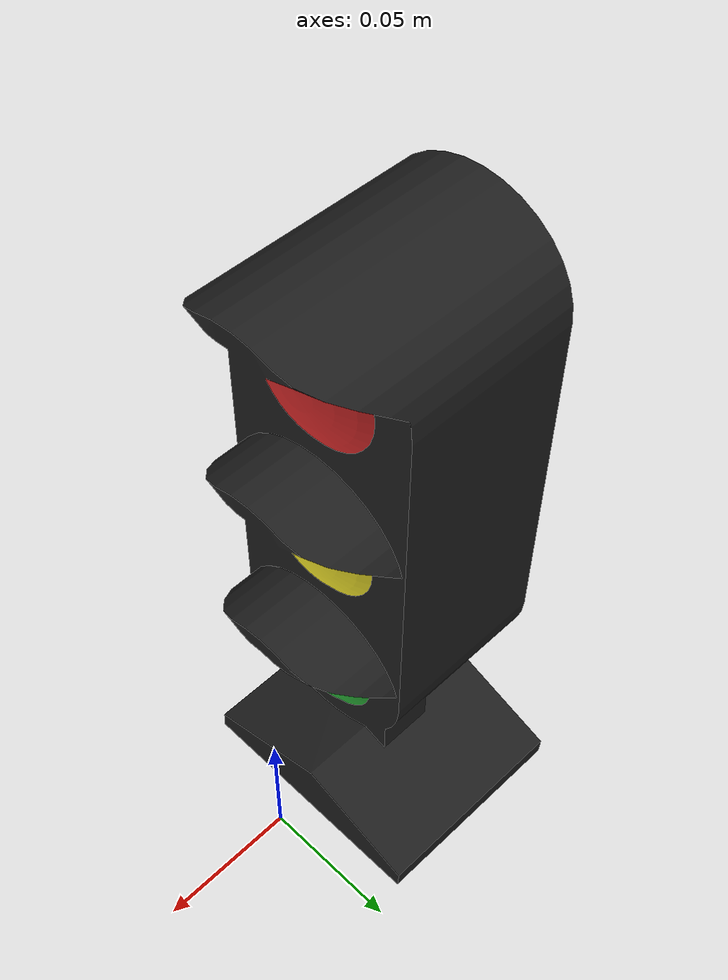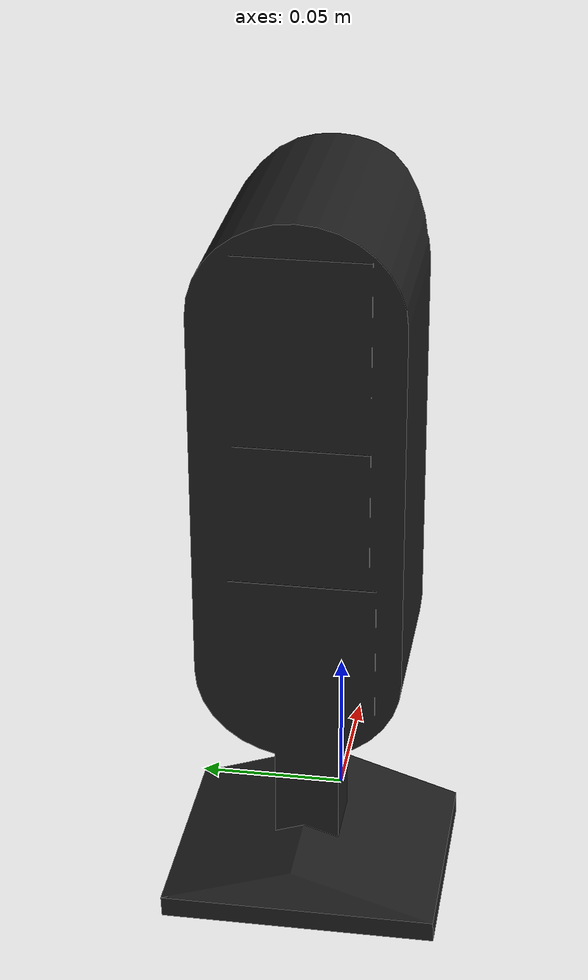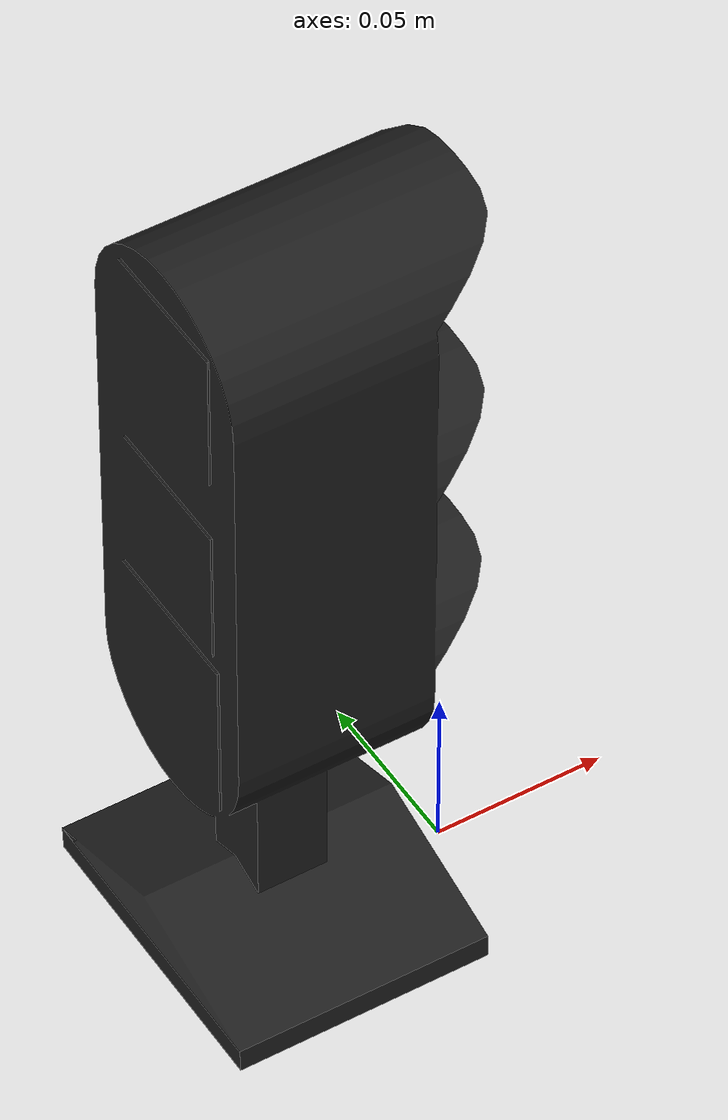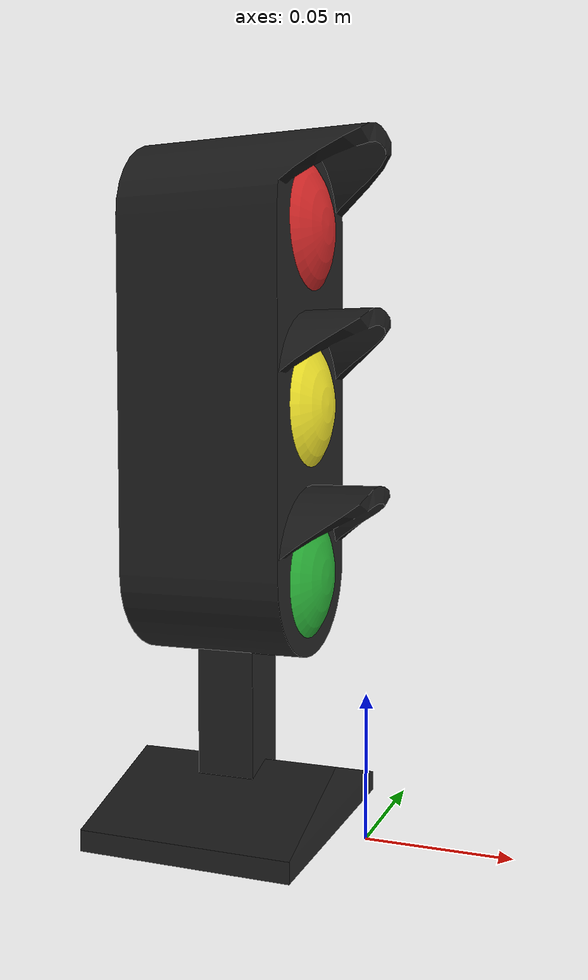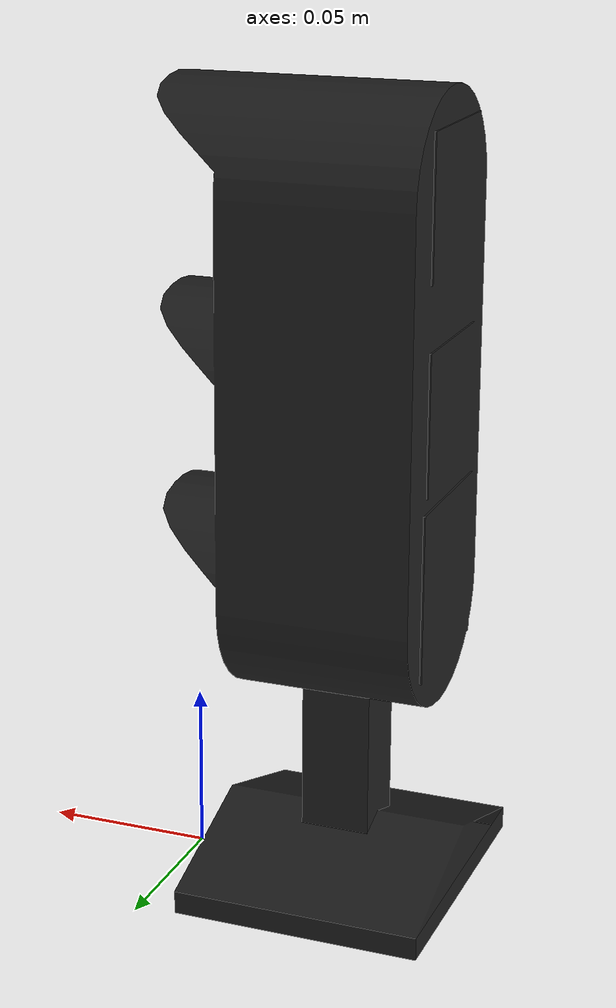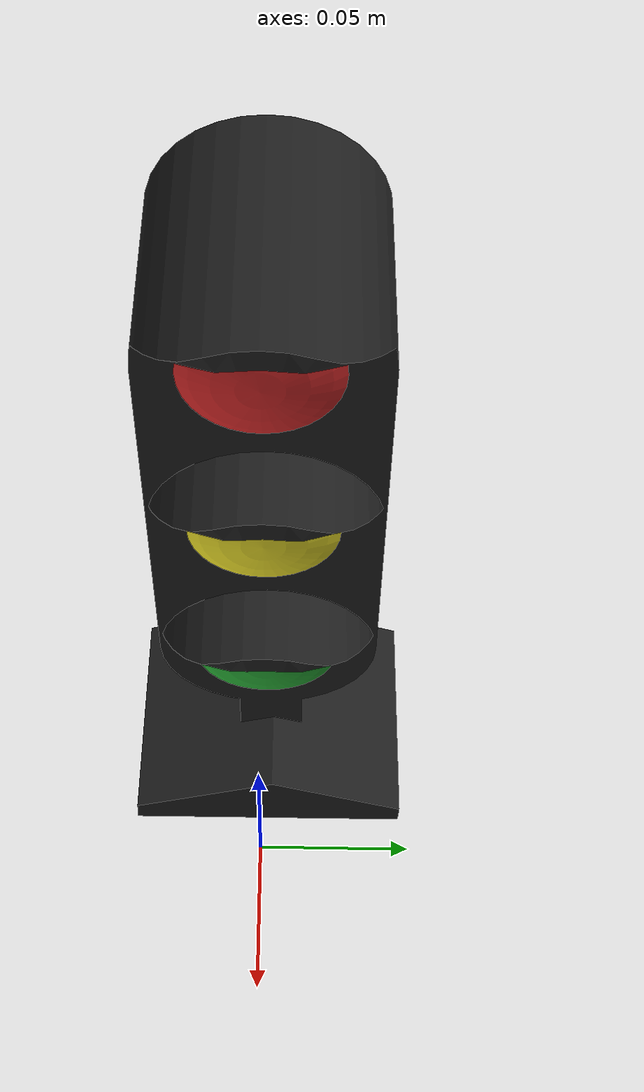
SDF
<?xml version='1.0'?>
<sdf version='1.6'>
  <model name='traffic_light'>
    <link name='case'>
      <inertial>
        <mass>0.5</mass>
        <inertia>
          <ixx>0.166667</ixx>
          <ixy>0</ixy>
          <ixz>0</ixz>
          <iyy>0.0</iyy>
          <iyz>0</iyz>
          <izz>0.0</izz>
        </inertia>
        <pose frame=''>0 0 0 0 0 0</pose>
      </inertial>
      <pose frame=''>-0.048681 0.002156 0 0 -0 0</pose>
      <gravity>1</gravity>
      <self_collide>0</self_collide>
      <kinematic>0</kinematic>
      <enable_wind>0</enable_wind>
      <visual name='visual'>
        <pose frame=''>0 0 0 0 -0 0</pose>
        <geometry>
          <mesh>
            <uri>model://traffic_light/meshes/traffic_light_case.dae</uri>
            <scale>1 1 1</scale>
          </mesh>
        </geometry>
        <material>
          <script>
            <uri>file://media/materials/scripts/gazebo.material</uri>
            <name>PR2/Black</name>
          </script>
          <shader type='vertex'>
            <normal_map>__default__</normal_map>
          </shader>
          <ambient>0.2 0.2 0.2 1</ambient>
          <diffuse>0.2 0.2 0.2 1</diffuse>
          <specular>0.01 0.01 0.01 1</specular>
          <emissive>0 0 0 1</emissive>
        </material>
        <transparency>0</transparency>
        <cast_shadows>0</cast_shadows>
      </visual>
      <collision name='collision'>
        <laser_retro>0</laser_retro>
        <max_contacts>10</max_contacts>
        <pose frame=''>0 0 0 0 -0 0</pose>
        <geometry>
          <mesh>
            <uri>model://traffic_light/meshes/traffic_light_case.dae</uri>
            <scale>1 1 1</scale>
          </mesh>
        </geometry>
        <surface>
          <friction>
            <ode>
              <mu>1</mu>
              <mu2>1</mu2>
              <fdir1>0 0 0</fdir1>
              <slip1>0</slip1>
              <slip2>0</slip2>
            </ode>
            <torsional>
              <coefficient>1</coefficient>
              <patch_radius>0</patch_radius>
              <surface_radius>0</surface_radius>
              <use_patch_radius>1</use_patch_radius>
              <ode>
                <slip>0</slip>
              </ode>
            </torsional>
          </friction>
          <bounce>
            <restitution_coefficient>0</restitution_coefficient>
            <threshold>1e+06</threshold>
          </bounce>
          <contact>
            <collide_without_contact>0</collide_without_contact>
            <collide_without_contact_bitmask>1</collide_without_contact_bitmask>
            <collide_bitmask>1</collide_bitmask>
            <ode>
              <soft_cfm>0</soft_cfm>
              <soft_erp>0.2</soft_erp>
              <kp>1e+13</kp>
              <kd>1</kd>
              <max_vel>0.01</max_vel>
              <min_depth>0</min_depth>
            </ode>
            <bullet>
              <split_impulse>1</split_impulse>
              <split_impulse_penetration_threshold>-0.01</split_impulse_penetration_threshold>
              <soft_cfm>0</soft_cfm>
              <soft_erp>0.2</soft_erp>
              <kp>1e+13</kp>
              <kd>1</kd>
            </bullet>
          </contact>
        </surface>
      </collision>
    </link>

    <link name='green_lens'>
	  <light name="green_lens_light" type='spot'>
         <pose frame="green_lens">4 0.001819 1.00 0 1.325891 0</pose>
		 <diffuse>0 255 0 0</diffuse>
		 <specular>0 255 0 0</specular>
		 <attenuation>
		   <range>5.00</range>
		   <linear>0</linear>
		   <constant>0.08</constant>
		   <quadratic>0</quadratic>
		 </attenuation>
		 <spot>
		  <inner_angle> 0 </inner_angle>
		  <outer_angle> 0.01 </outer_angle>
		  <falloff> 1.0 </falloff>
 		 </spot>
		 <cast_shadows>0</cast_shadows>
      </light>

      <inertial>
        <mass>1</mass>
        <inertia>
          <ixx>0.166667</ixx>
          <ixy>0</ixy>
          <ixz>0</ixz>
          <iyy>0.166667</iyy>
          <iyz>0</iyz>
          <izz>0.166667</izz>
        </inertia>
      </inertial>
      <pose frame=''>-0.018681 -0.000719 0.09102 0 -0 0</pose>
      <visual name='visual'>
        <pose frame=''>0 0 0 0 -0 0</pose>
        <geometry>
          <mesh>
            <uri>model://traffic_light/meshes/traffic_light_lens.dae</uri>
            <scale>1 1 1</scale>
          </mesh>
        </geometry>
        <material>
          <script>
            <uri>model://traffic_light/materials/scripts</uri>
            <uri>model://traffic_light/materials/textures</uri>
            <name>GREEN_LENS</name>
          </script>
          <emissive>0 0 0 1</emissive>
        </material>
        <transparency>0</transparency>
        <cast_shadows>0</cast_shadows>
      </visual>
      <collision name='collision'>
        <laser_retro>0</laser_retro>
        <max_contacts>10</max_contacts>
        <pose frame=''>0 0 0 0 -0 0</pose>
        <geometry>
          <mesh>
            <uri>model://traffic_light/meshes/traffic_light_lens.dae</uri>
            <scale>1 1 1</scale>
          </mesh>
        </geometry>
        <surface>
          <friction>
            <ode>
              <mu>1</mu>
              <mu2>1</mu2>
              <fdir1>0 0 0</fdir1>
              <slip1>0</slip1>
              <slip2>0</slip2>
            </ode>
            <torsional>
              <coefficient>1</coefficient>
              <patch_radius>0</patch_radius>
              <surface_radius>0</surface_radius>
              <use_patch_radius>1</use_patch_radius>
              <ode>
                <slip>0</slip>
              </ode>
            </torsional>
          </friction>
          <bounce>
            <restitution_coefficient>0</restitution_coefficient>
            <threshold>1e+06</threshold>
          </bounce>
          <contact>
            <collide_without_contact>0</collide_without_contact>
            <collide_without_contact_bitmask>1</collide_without_contact_bitmask>
            <collide_bitmask>1</collide_bitmask>
            <ode>
              <soft_cfm>0</soft_cfm>
              <soft_erp>0.2</soft_erp>
              <kp>1e+13</kp>
              <kd>1</kd>
              <max_vel>0.01</max_vel>
              <min_depth>0</min_depth>
            </ode>
            <bullet>
              <split_impulse>1</split_impulse>
              <split_impulse_penetration_threshold>-0.01</split_impulse_penetration_threshold>
              <soft_cfm>0</soft_cfm>
              <soft_erp>0.2</soft_erp>
              <kp>1e+13</kp>
              <kd>1</kd>
            </bullet>
          </contact>
        </surface>
      </collision>
    </link>

    <link name='yellow_lens'>
	<light name="yellow_lens_light" type='spot'>
         <pose frame="yellow_lens">4 0.001819 1.00 0 1.325891 0</pose>
		 <diffuse>255 255 0 0</diffuse>
		 <specular>255 255 0 0</specular>
		 <attenuation>
		   <range>5.00</range>
		   <linear>0</linear>
       <constant>0.08</constant>
		   <quadratic>0</quadratic>
		 </attenuation>
		 <spot>
		  <inner_angle> 0 </inner_angle>
		  <outer_angle> 0.01 </outer_angle>
		  <falloff> 1.0 </falloff>
 		 </spot>
		 <cast_shadows>0</cast_shadows>
      </light>

      <inertial>
        <mass>1</mass>
        <inertia>
          <ixx>0.166667</ixx>
          <ixy>0</ixy>
          <ixz>0</ixz>
          <iyy>0.166667</iyy>
          <iyz>0</iyz>
          <izz>0.166667</izz>
        </inertia>
      </inertial>
      <pose frame=''>-0.018681 -0.000719 0.15 0 -0 0</pose>
      <visual name='visual'>
        <pose frame=''>0 0 0 0 -0 0</pose>
        <geometry>
          <mesh>
            <uri>model://traffic_light/meshes/traffic_light_lens.dae</uri>
            <scale>1 1 1</scale>
          </mesh>
        </geometry>
        <material>
          <script>
             <uri>model://traffic_light/materials/scripts</uri>
             <uri>model://traffic_light/materials/textures</uri>
             <name>YELLOW_LENS</name>
          </script>
          <emissive>0 0 0 1</emissive>
        </material>
        <transparency>0</transparency>
        <cast_shadows>0</cast_shadows>
      </visual>
      <collision name='collision'>
        <laser_retro>0</laser_retro>
        <max_contacts>10</max_contacts>
        <pose frame=''>0 0 0 0 -0 0</pose>
        <geometry>
          <mesh>
            <uri>model://traffic_light_assembly/meshes/traffic_light_lens.dae</uri>
            <scale>1 1 1</scale>
          </mesh>
        </geometry>
        <surface>
          <friction>
            <ode>
              <mu>1</mu>
              <mu2>1</mu2>
              <fdir1>0 0 0</fdir1>
              <slip1>0</slip1>
              <slip2>0</slip2>
            </ode>
            <torsional>
              <coefficient>1</coefficient>
              <patch_radius>0</patch_radius>
              <surface_radius>0</surface_radius>
              <use_patch_radius>1</use_patch_radius>
              <ode>
                <slip>0</slip>
              </ode>
            </torsional>
          </friction>
          <bounce>
            <restitution_coefficient>0</restitution_coefficient>
            <threshold>1e+06</threshold>
          </bounce>
          <contact>
            <collide_without_contact>0</collide_without_contact>
            <collide_without_contact_bitmask>1</collide_without_contact_bitmask>
            <collide_bitmask>1</collide_bitmask>
            <ode>
              <soft_cfm>0</soft_cfm>
              <soft_erp>0.2</soft_erp>
              <kp>1e+13</kp>
              <kd>1</kd>
              <max_vel>0.01</max_vel>
              <min_depth>0</min_depth>
            </ode>
            <bullet>
              <split_impulse>1</split_impulse>
              <split_impulse_penetration_threshold>-0.01</split_impulse_penetration_threshold>
              <soft_cfm>0</soft_cfm>
              <soft_erp>0.2</soft_erp>
              <kp>1e+13</kp>
              <kd>1</kd>
            </bullet>
          </contact>
        </surface>
      </collision>
    </link>

    <link name='red_lens'>
	<light name="red_lens_light" type='spot'>
         <pose frame="red_lens">4 0.001819 1.0 0 1.325891 0</pose>
		 <diffuse>255 0 0 0</diffuse>
		 <specular>255 0 0 0</specular>
		 <attenuation>
		   <range>5.00</range>
		   <linear>0</linear>
       <constant>0.08</constant>
		   <quadratic>0</quadratic>
		 </attenuation>
		 <spot>
		  <inner_angle> 0 </inner_angle>
		  <outer_angle> 0.01 </outer_angle>
		  <falloff> 1.0 </falloff>
 		 </spot>
		 <cast_shadows>0</cast_shadows>
      </light>

      <inertial>
        <mass>1</mass>
        <inertia>
          <ixx>0.166667</ixx>
          <ixy>0</ixy>
          <ixz>0</ixz>
          <iyy>0.166667</iyy>
          <iyz>0</iyz>
          <izz>0.166667</izz>
        </inertia>
      </inertial>
      <pose frame=''>-0.018681 -0.000719 0.21022 0 -0 0</pose>
      <visual name='visual'>
        <pose frame=''>0 0 0 0 -0 0</pose>
        <geometry>
          <mesh>
            <uri>model://traffic_light/meshes/traffic_light_lens.dae</uri>
            <scale>1 1 1</scale>
          </mesh>
        </geometry>
        <material>
          <script>
            <uri>model://traffic_light/materials/scripts</uri>
            <uri>model://traffic_light/materials/textures</uri>
            <name>RED_LENS</name>
          </script>
          <emissive>0 0 0 1</emissive>
        </material>
        <transparency>0</transparency>
        <cast_shadows>0</cast_shadows>
      </visual>
      <collision name='collision'>
        <laser_retro>0</laser_retro>
        <max_contacts>10</max_contacts>
        <pose frame=''>0 0 0 0 -0 0</pose>
        <geometry>
          <mesh>
            <uri>model://traffic_light_lens/meshes/traffic_light_lens.dae</uri>
            <scale>1 1 1</scale>
          </mesh>
        </geometry>
        <surface>
          <friction>
            <ode>
              <mu>1</mu>
              <mu2>1</mu2>
              <fdir1>0 0 0</fdir1>
              <slip1>0</slip1>
              <slip2>0</slip2>
            </ode>
            <torsional>
              <coefficient>1</coefficient>
              <patch_radius>0</patch_radius>
              <surface_radius>0</surface_radius>
              <use_patch_radius>1</use_patch_radius>
              <ode>
                <slip>0</slip>
              </ode>
            </torsional>
          </friction>
          <bounce>
            <restitution_coefficient>0</restitution_coefficient>
            <threshold>1e+06</threshold>
          </bounce>
          <contact>
            <collide_without_contact>0</collide_without_contact>
            <collide_without_contact_bitmask>1</collide_without_contact_bitmask>
            <collide_bitmask>1</collide_bitmask>
            <ode>
              <soft_cfm>0</soft_cfm>
              <soft_erp>0.2</soft_erp>
              <kp>1e+13</kp>
              <kd>1</kd>
              <max_vel>0.01</max_vel>
              <min_depth>0</min_depth>
            </ode>
            <bullet>
              <split_impulse>1</split_impulse>
              <split_impulse_penetration_threshold>-0.01</split_impulse_penetration_threshold>
              <soft_cfm>0</soft_cfm>
              <soft_erp>0.2</soft_erp>
              <kp>1e+13</kp>
              <kd>1</kd>
            </bullet>
          </contact>
        </surface>
      </collision>
    </link>
    <joint name='link_1_JOINT_0' type='fixed'>
      <parent>case</parent>
      <child>red_lens</child>
      <pose frame=''>0 0 0 0 -0 0</pose>
      <physics>
        <ode>
          <limit>
            <cfm>0</cfm>
            <erp>0.2</erp>
          </limit>
          <suspension>
            <cfm>0</cfm>
            <erp>0.2</erp>
          </suspension>
        </ode>
      </physics>
    </joint>
    <joint name='link_1_JOINT_1' type='fixed'>
      <parent>case</parent>
      <child>yellow_lens</child>
      <pose frame=''>0 0 0 0 -0 0</pose>
      <physics>
        <ode>
          <limit>
            <cfm>0</cfm>
            <erp>0.2</erp>
          </limit>
          <suspension>
            <cfm>0</cfm>
            <erp>0.2</erp>
          </suspension>
        </ode>
      </physics>
    </joint>
    <joint name='link_1_JOINT_2' type='fixed'>
      <parent>case</parent>
      <child>green_lens</child>
      <pose frame=''>0 0 0 0 -0 0</pose>
      <physics>
        <ode>
          <limit>
            <cfm>0</cfm>
            <erp>0.2</erp>
          </limit>
          <suspension>
            <cfm>0</cfm>
            <erp>0.2</erp>
          </suspension>
        </ode>
      </physics>
    </joint>
    <static>1</static>
    <allow_auto_disable>1</allow_auto_disable>

    <plugin name="traffic_light_plugin" filename="libtraffic_light_plugin.so"></plugin>

  </model>
</sdf>
